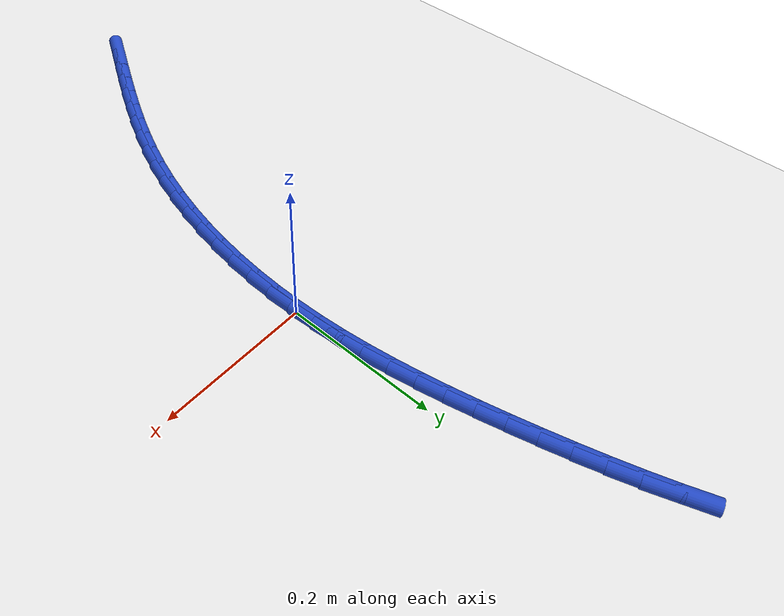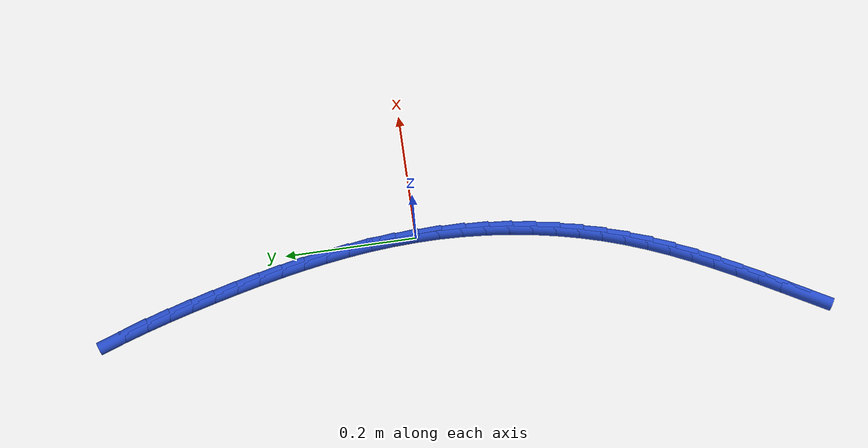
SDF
<sdf version="1.6">
 <world name="default">
  <model name="ground_plane">
   <static>1</static>
   <link name="link">
    <collision name="collision">
     <geometry><plane><normal>0 0 1</normal><size>100 100</size></plane></geometry>
     <surface><friction><ode><mu>100</mu><mu2>50</mu2></ode></friction></surface>
    </collision>
    <visual name="visual">
     <cast_shadows>0</cast_shadows>
     <geometry><plane><normal>0 0 1</normal><size>100 100</size></plane></geometry>
     <material>
      <script><uri>file://media/materials/scripts/gazebo.material</uri><name>Gazebo/WhiteGlow</name></script>
     </material>
    </visual>
   </link>
  </model>
  <model name="line">
   <link name="link_0">
    <pose>1.734723475976807e-18 6.938893903907228e-18 0.01 0 1.57 -1.5310453082077948</pose>
    <collision name="collision">
     <geometry><cylinder><radius>0.01</radius><length>0.08</length></cylinder></geometry>
    </collision>
    <visual name="visual">
     <material>
      <script><name>Gazebo/Blue</name><uri>file://media/materials/scripts/gazebo.material</uri></script>
     </material>
     <geometry><cylinder><radius>0.01</radius><length>0.08</length></cylinder></geometry>
    </visual>
   </link>
   <link name="link_1">
    <pose>-0.0014066485565266734 0.03536783776255696 0.01 0 1.57 -1.4940458626089452</pose>
    <collision name="collision">
     <geometry><cylinder><radius>0.01</radius><length>0.08</length></cylinder></geometry>
    </collision>
    <visual name="visual">
     <material>
      <script><name>Gazebo/Blue</name><uri>file://media/materials/scripts/gazebo.material</uri></script>
     </material>
     <geometry><cylinder><radius>0.01</radius><length>0.08</length></cylinder></geometry>
    </visual>
   </link>
   <link name="link_2">
    <pose>-0.004113861491051096 0.07057146996437094 0.01 0 1.57 -1.4600752491633235</pose>
    <collision name="collision">
     <geometry><cylinder><radius>0.01</radius><length>0.08</length></cylinder></geometry>
    </collision>
    <visual name="visual">
     <material>
      <script><name>Gazebo/Blue</name><uri>file://media/materials/scripts/gazebo.material</uri></script>
     </material>
     <geometry><cylinder><radius>0.01</radius><length>0.08</length></cylinder></geometry>
    </visual>
   </link>
   <link name="link_3">
    <pose>-0.008011516258943882 0.10562996558287625 0.01 0 1.57 -1.4292463979921937</pose>
    <collision name="collision">
     <geometry><cylinder><radius>0.01</radius><length>0.08</length></cylinder></geometry>
    </collision>
    <visual name="visual">
     <material>
      <script><name>Gazebo/Blue</name><uri>file://media/materials/scripts/gazebo.material</uri></script>
     </material>
     <geometry><cylinder><radius>0.01</radius><length>0.08</length></cylinder></geometry>
    </visual>
   </link>
   <link name="link_4">
    <pose>-0.012989490315575633 0.14056239359550732 0.01 0 1.57 -1.4016290929852517</pose>
    <collision name="collision">
     <geometry><cylinder><radius>0.01</radius><length>0.08</length></cylinder></geometry>
    </collision>
    <visual name="visual">
     <material>
      <script><name>Gazebo/Blue</name><uri>file://media/materials/scripts/gazebo.material</uri></script>
     </material>
     <geometry><cylinder><radius>0.01</radius><length>0.08</length></cylinder></geometry>
    </visual>
   </link>
   <link name="link_5">
    <pose>-0.018937661116316947 0.1753878229796984 0.01 0 1.57 -1.3772583165151595</pose>
    <collision name="collision">
     <geometry><cylinder><radius>0.01</radius><length>0.08</length></cylinder></geometry>
    </collision>
    <visual name="visual">
     <material>
      <script><name>Gazebo/Blue</name><uri>file://media/materials/scripts/gazebo.material</uri></script>
     </material>
     <geometry><cylinder><radius>0.01</radius><length>0.08</length></cylinder></geometry>
    </visual>
   </link>
   <link name="link_6">
    <pose>-0.025745906116538438 0.21012532271288392 0.01 0 1.57 -1.356142556914128</pose>
    <collision name="collision">
     <geometry><cylinder><radius>0.01</radius><length>0.08</length></cylinder></geometry>
    </collision>
    <visual name="visual">
     <material>
      <script><name>Gazebo/Blue</name><uri>file://media/materials/scripts/gazebo.material</uri></script>
     </material>
     <geometry><cylinder><radius>0.01</radius><length>0.08</length></cylinder></geometry>
    </visual>
   </link>
   <link name="link_7">
    <pose>-0.03330410277161073 0.2447939617724983 0.01 0 1.57 -1.338271521490759</pose>
    <collision name="collision">
     <geometry><cylinder><radius>0.01</radius><length>0.08</length></cylinder></geometry>
    </collision>
    <visual name="visual">
     <material>
      <script><name>Gazebo/Blue</name><uri>file://media/materials/scripts/gazebo.material</uri></script>
     </material>
     <geometry><cylinder><radius>0.01</radius><length>0.08</length></cylinder></geometry>
    </visual>
   </link>
   <link name="link_8">
    <pose>-0.04150212853690438 0.27941280913597566 0.01 0 1.57 -1.323619609899118</pose>
    <collision name="collision">
     <geometry><cylinder><radius>0.01</radius><length>0.08</length></cylinder></geometry>
    </collision>
    <visual name="visual">
     <material>
      <script><name>Gazebo/Blue</name><uri>file://media/materials/scripts/gazebo.material</uri></script>
     </material>
     <geometry><cylinder><radius>0.01</radius><length>0.08</length></cylinder></geometry>
    </visual>
   </link>
   <link name="link_9">
    <pose>-0.05022996867380355 0.3140008791503931 0.01 0 1.57 -1.3105177332631843</pose>
    <collision name="collision">
     <geometry><cylinder><radius>0.01</radius><length>0.08</length></cylinder></geometry>
    </collision>
    <visual name="visual">
     <material>
      <script><name>Gazebo/Blue</name><uri>file://media/materials/scripts/gazebo.material</uri></script>
     </material>
     <geometry><cylinder><radius>0.01</radius><length>0.08</length></cylinder></geometry>
    </visual>
   </link>
   <link name="link_10">
    <pose>-0.05943110644077755 0.3485500762214679 0.01 0 1.57 -1.294639159193329</pose>
    <collision name="collision">
     <geometry><cylinder><radius>0.01</radius><length>0.08</length></cylinder></geometry>
    </collision>
    <visual name="visual">
     <material>
      <script><name>Gazebo/Blue</name><uri>file://media/materials/scripts/gazebo.material</uri></script>
     </material>
     <geometry><cylinder><radius>0.01</radius><length>0.08</length></cylinder></geometry>
    </visual>
   </link>
   <link name="link_11">
    <pose>-0.06918889312468006 0.3829814270724964 0.01 0 1.57 -1.275231451033211</pose>
    <collision name="collision">
     <geometry><cylinder><radius>0.01</radius><length>0.08</length></cylinder></geometry>
    </collision>
    <visual name="visual">
     <material>
      <script><name>Gazebo/Blue</name><uri>file://media/materials/scripts/gazebo.material</uri></script>
     </material>
     <geometry><cylinder><radius>0.01</radius><length>0.08</length></cylinder></geometry>
    </visual>
   </link>
   <link name="link_12">
    <pose>-0.07960925500252211 0.4172045186216846 0.01 0 1.57 -1.2522134530300866</pose>
    <collision name="collision">
     <geometry><cylinder><radius>0.01</radius><length>0.08</length></cylinder></geometry>
    </collision>
    <visual name="visual">
     <material>
      <script><name>Gazebo/Blue</name><uri>file://media/materials/scripts/gazebo.material</uri></script>
     </material>
     <geometry><cylinder><radius>0.01</radius><length>0.08</length></cylinder></geometry>
    </visual>
   </link>
   <link name="link_13">
    <pose>-0.0907981183513147 0.45112893778723906 0.01 0 1.57 -1.2254896771387778</pose>
    <collision name="collision">
     <geometry><cylinder><radius>0.01</radius><length>0.08</length></cylinder></geometry>
    </collision>
    <visual name="visual">
     <material>
      <script><name>Gazebo/Blue</name><uri>file://media/materials/scripts/gazebo.material</uri></script>
     </material>
     <geometry><cylinder><radius>0.01</radius><length>0.08</length></cylinder></geometry>
    </visual>
   </link>
   <link name="link_183">
    <pose>-0.17796679479845334 -0.5652474391885502 0.01 0 1.57 1.0464988808354252</pose>
    <collision name="collision">
     <geometry><cylinder><radius>0.01</radius><length>0.08</length></cylinder></geometry>
    </collision>
    <visual name="visual">
     <material>
      <script><name>Gazebo/Blue</name><uri>file://media/materials/scripts/gazebo.material</uri></script>
     </material>
     <geometry><cylinder><radius>0.01</radius><length>0.08</length></cylinder></geometry>
    </visual>
   </link>
   <link name="link_184">
    <pose>-0.15984294401642798 -0.533906597983392 0.01 0 1.57 1.0509021387517805</pose>
    <collision name="collision">
     <geometry><cylinder><radius>0.01</radius><length>0.08</length></cylinder></geometry>
    </collision>
    <visual name="visual">
     <material>
      <script><name>Gazebo/Blue</name><uri>file://media/materials/scripts/gazebo.material</uri></script>
     </material>
     <geometry><cylinder><radius>0.01</radius><length>0.08</length></cylinder></geometry>
    </visual>
   </link>
   <link name="link_185">
    <pose>-0.14204752282599709 -0.5028186213747124 0.01 0 1.57 1.0610595106575742</pose>
    <collision name="collision">
     <geometry><cylinder><radius>0.01</radius><length>0.08</length></cylinder></geometry>
    </collision>
    <visual name="visual">
     <material>
      <script><name>Gazebo/Blue</name><uri>file://media/materials/scripts/gazebo.material</uri></script>
     </material>
     <geometry><cylinder><radius>0.01</radius><length>0.08</length></cylinder></geometry>
    </visual>
   </link>
   <link name="link_186">
    <pose>-0.124732010559823 -0.47184348318986064 0.01 0 1.57 1.0770909426860045</pose>
    <collision name="collision">
     <geometry><cylinder><radius>0.01</radius><length>0.08</length></cylinder></geometry>
    </collision>
    <visual name="visual">
     <material>
      <script><name>Gazebo/Blue</name><uri>file://media/materials/scripts/gazebo.material</uri></script>
     </material>
     <geometry><cylinder><radius>0.01</radius><length>0.08</length></cylinder></geometry>
    </visual>
   </link>
   <link name="link_187">
    <pose>-0.1080478865505679 -0.44084115725618533 0.01 0 1.57 1.0990587835388117</pose>
    <collision name="collision">
     <geometry><cylinder><radius>0.01</radius><length>0.08</length></cylinder></geometry>
    </collision>
    <visual name="visual">
     <material>
      <script><name>Gazebo/Blue</name><uri>file://media/materials/scripts/gazebo.material</uri></script>
     </material>
     <geometry><cylinder><radius>0.01</radius><length>0.08</length></cylinder></geometry>
    </visual>
   </link>
   <link name="link_188">
    <pose>-0.0921466301308941 -0.40967161740103564 0.01 0 1.57 1.1269478712669552</pose>
    <collision name="collision">
     <geometry><cylinder><radius>0.01</radius><length>0.08</length></cylinder></geometry>
    </collision>
    <visual name="visual">
     <material>
      <script><name>Gazebo/Blue</name><uri>file://media/materials/scripts/gazebo.material</uri></script>
     </material>
     <geometry><cylinder><radius>0.01</radius><length>0.08</length></cylinder></geometry>
    </visual>
   </link>
   <link name="link_189">
    <pose>-0.07717972063346389 -0.37819483745176075 0.01 0 1.57 1.1606409786612102</pose>
    <collision name="collision">
     <geometry><cylinder><radius>0.01</radius><length>0.08</length></cylinder></geometry>
    </collision>
    <visual name="visual">
     <material>
      <script><name>Gazebo/Blue</name><uri>file://media/materials/scripts/gazebo.material</uri></script>
     </material>
     <geometry><cylinder><radius>0.01</radius><length>0.08</length></cylinder></geometry>
    </visual>
   </link>
   <link name="link_190">
    <pose>-0.06329863739093945 -0.3462707912357095 0.01 0 1.57 1.199892232481412</pose>
    <collision name="collision">
     <geometry><cylinder><radius>0.01</radius><length>0.08</length></cylinder></geometry>
    </collision>
    <visual name="visual">
     <material>
      <script><name>Gazebo/Blue</name><uri>file://media/materials/scripts/gazebo.material</uri></script>
     </material>
     <geometry><cylinder><radius>0.01</radius><length>0.08</length></cylinder></geometry>
    </visual>
   </link>
   <link name="link_191">
    <pose>-0.05065485973598312 -0.31375945258023125 0.01 0 1.57 1.2436412932280478</pose>
    <collision name="collision">
     <geometry><cylinder><radius>0.01</radius><length>0.08</length></cylinder></geometry>
    </collision>
    <visual name="visual">
     <material>
      <script><name>Gazebo/Blue</name><uri>file://media/materials/scripts/gazebo.material</uri></script>
     </material>
     <geometry><cylinder><radius>0.01</radius><length>0.08</length></cylinder></geometry>
    </visual>
   </link>
   <link name="link_192">
    <pose>-0.03938403971320657 -0.2805464088687081 0.01 0 1.57 1.2875087900373787</pose>
    <collision name="collision">
     <geometry><cylinder><radius>0.01</radius><length>0.08</length></cylinder></geometry>
    </collision>
    <visual name="visual">
     <material>
      <script><name>Gazebo/Blue</name><uri>file://media/materials/scripts/gazebo.material</uri></script>
     </material>
     <geometry><cylinder><radius>0.01</radius><length>0.08</length></cylinder></geometry>
    </visual>
   </link>
   <link name="link_193">
    <pose>-0.029523768125160346 -0.24667594157728615 0.01 0 1.57 1.3300898856938026</pose>
    <collision name="collision">
     <geometry><cylinder><radius>0.01</radius><length>0.08</length></cylinder></geometry>
    </collision>
    <visual name="visual">
     <material>
      <script><name>Gazebo/Blue</name><uri>file://media/materials/scripts/gazebo.material</uri></script>
     </material>
     <geometry><cylinder><radius>0.01</radius><length>0.08</length></cylinder></geometry>
    </visual>
   </link>
   <link name="link_194">
    <pose>-0.02107412841762142 -0.2122530309437266 0.01 0 1.57 1.371610438973343</pose>
    <collision name="collision">
     <geometry><cylinder><radius>0.01</radius><length>0.08</length></cylinder></geometry>
    </collision>
    <visual name="visual">
     <material>
      <script><name>Gazebo/Blue</name><uri>file://media/materials/scripts/gazebo.material</uri></script>
     </material>
     <geometry><cylinder><radius>0.01</radius><length>0.08</length></cylinder></geometry>
    </visual>
   </link>
   <link name="link_195">
    <pose>-0.014035128453749773 -0.17738277952236026 0.01 0 1.57 1.412297406746078</pose>
    <collision name="collision">
     <geometry><cylinder><radius>0.01</radius><length>0.08</length></cylinder></geometry>
    </collision>
    <visual name="visual">
     <material>
      <script><name>Gazebo/Blue</name><uri>file://media/materials/scripts/gazebo.material</uri></script>
     </material>
     <geometry><cylinder><radius>0.01</radius><length>0.08</length></cylinder></geometry>
    </visual>
   </link>
   <link name="link_196">
    <pose>-0.008406776096705388 -0.14217028986751767 0.01 0 1.57 1.4523758108856375</pose>
    <collision name="collision">
     <geometry><cylinder><radius>0.01</radius><length>0.08</length></cylinder></geometry>
    </collision>
    <visual name="visual">
     <material>
      <script><name>Gazebo/Blue</name><uri>file://media/materials/scripts/gazebo.material</uri></script>
     </material>
     <geometry><cylinder><radius>0.01</radius><length>0.08</length></cylinder></geometry>
    </visual>
   </link>
   <link name="link_197">
    <pose>-0.0041890792096482415 -0.10672066453352964 0.01 0 1.57 1.4920694763901845</pose>
    <collision name="collision">
     <geometry><cylinder><radius>0.01</radius><length>0.08</length></cylinder></geometry>
    </collision>
    <visual name="visual">
     <material>
      <script><name>Gazebo/Blue</name><uri>file://media/materials/scripts/gazebo.material</uri></script>
     </material>
     <geometry><cylinder><radius>0.01</radius><length>0.08</length></cylinder></geometry>
    </visual>
   </link>
   <link name="link_198">
    <pose>-0.0013820456557383058 -0.07113900607472684 0.01 0 1.57 1.53160220813989</pose>
    <collision name="collision">
     <geometry><cylinder><radius>0.01</radius><length>0.08</length></cylinder></geometry>
    </collision>
    <visual name="visual">
     <material>
      <script><name>Gazebo/Blue</name><uri>file://media/materials/scripts/gazebo.material</uri></script>
     </material>
     <geometry><cylinder><radius>0.01</radius><length>0.08</length></cylinder></geometry>
    </visual>
   </link>
   <link name="link_199">
    <pose>1.4316701864432353e-05 -0.03553041704544 0.01 0 1.57 -1.570393384688383</pose>
    <collision name="collision">
     <geometry><cylinder><radius>0.01</radius><length>0.08</length></cylinder></geometry>
    </collision>
    <visual name="visual">
     <material>
      <script><name>Gazebo/Blue</name><uri>file://media/materials/scripts/gazebo.material</uri></script>
     </material>
     <geometry><cylinder><radius>0.01</radius><length>0.08</length></cylinder></geometry>
    </visual>
   </link>
   <link name="link_200">
    <pose>4.336808689942018e-18 1.8735013540549517e-16 0.01 0 1.57 -1.5305036107754737</pose>
    <collision name="collision">
     <geometry><cylinder><radius>0.01</radius><length>0.08</length></cylinder></geometry>
    </collision>
    <visual name="visual">
     <material>
      <script><name>Gazebo/Blue</name><uri>file://media/materials/scripts/gazebo.material</uri></script>
     </material>
     <geometry><cylinder><radius>0.01</radius><length>0.08</length></cylinder></geometry>
    </visual>
   </link>
   <link name="link_201">
    <pose>-0.001425003624491621 0.03534714250726381 0.01 0 1.57 -1.530503610775474</pose>
    <collision name="collision">
     <geometry><cylinder><radius>0.01</radius><length>0.08</length></cylinder></geometry>
    </collision>
    <visual name="visual">
     <material>
      <script><name>Gazebo/Blue</name><uri>file://media/materials/scripts/gazebo.material</uri></script>
     </material>
     <geometry><cylinder><radius>0.01</radius><length>0.08</length></cylinder></geometry>
    </visual>
   </link>
  </model>
 </world>
</sdf>
